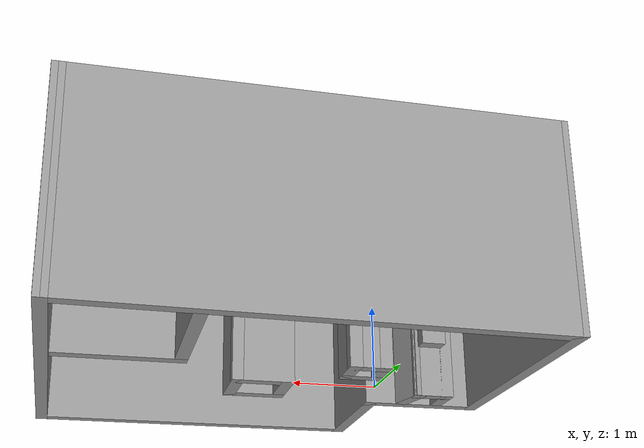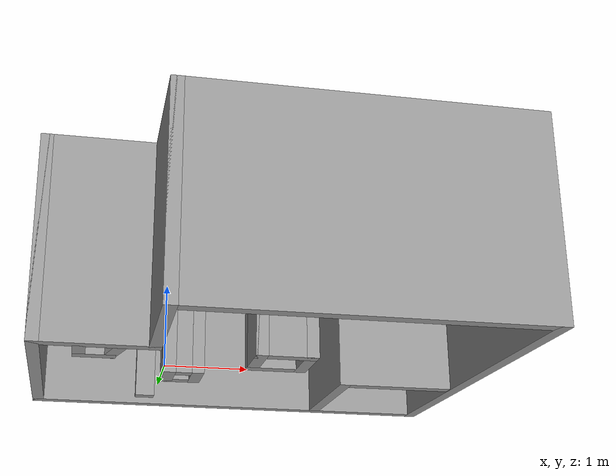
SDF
<?xml version='1.0'?>
<sdf version='1.7'>
  <model name='Project_Room'>
    <pose>1.19362 0.01611 0 0 -0 0</pose>
    <link name='Wall_10'>
      <collision name='Wall_10_Collision'>
        <geometry>
          <box>
            <size>0.538102 0.15 2.5</size>
          </box>
        </geometry>
        <pose>0 0 1.25 0 -0 0</pose>
      </collision>
      <visual name='Wall_10_Visual'>
        <pose>0 0 1.25 0 -0 0</pose>
        <geometry>
          <box>
            <size>0.538102 0.15 2.5</size>
          </box>
        </geometry>
        <material>
          <script>
            <uri>file://media/materials/scripts/gazebo.material</uri>
            <name>Gazebo/Grey</name>
          </script>
          <ambient>1 1 1 1</ambient>
        </material>
        <meta>
          <layer>0</layer>
        </meta>
      </visual>
      <pose>-1.10135 0.53934 0 0 -0 -1.5708</pose>
    </link>
    <link name='Wall_11'>
      <collision name='Wall_11_Collision'>
        <geometry>
          <box>
            <size>0.5 0.15 2.5</size>
          </box>
        </geometry>
        <pose>0 0 1.25 0 -0 0</pose>
      </collision>
      <visual name='Wall_11_Visual'>
        <pose>0 0 1.25 0 -0 0</pose>
        <geometry>
          <box>
            <size>0.5 0.15 2.5</size>
          </box>
        </geometry>
        <material>
          <script>
            <uri>file://media/materials/scripts/gazebo.material</uri>
            <name>Gazebo/Grey</name>
          </script>
          <ambient>1 1 1 1</ambient>
        </material>
        <meta>
          <layer>0</layer>
        </meta>
      </visual>
      <pose>-0.933906 0.345437 0 0 -0 0</pose>
    </link>
    <link name='Wall_12'>
      <collision name='Wall_12_Collision'>
        <geometry>
          <box>
            <size>0.538102 0.15 2.5</size>
          </box>
        </geometry>
        <pose>0 0 1.25 0 -0 0</pose>
      </collision>
      <visual name='Wall_12_Visual'>
        <pose>0 0 1.25 0 -0 0</pose>
        <geometry>
          <box>
            <size>0.538102 0.15 2.5</size>
          </box>
        </geometry>
        <material>
          <script>
            <uri>file://media/materials/scripts/gazebo.material</uri>
            <name>Gazebo/Grey</name>
          </script>
          <ambient>1 1 1 1</ambient>
        </material>
        <meta>
          <layer>0</layer>
        </meta>
      </visual>
      <pose>-0.751345 0.53934 0 0 -0 1.5708</pose>
    </link>
    <link name='Wall_13'>
      <collision name='Wall_13_Collision'>
        <geometry>
          <box>
            <size>0.5 0.15 2.5</size>
          </box>
        </geometry>
        <pose>0 0 1.25 0 -0 0</pose>
      </collision>
      <visual name='Wall_13_Visual'>
        <pose>0 0 1.25 0 -0 0</pose>
        <geometry>
          <box>
            <size>0.5 0.15 2.5</size>
          </box>
        </geometry>
        <material>
          <script>
            <uri>file://media/materials/scripts/gazebo.material</uri>
            <name>Gazebo/Grey</name>
          </script>
          <ambient>1 1 1 1</ambient>
        </material>
        <meta>
          <layer>0</layer>
        </meta>
      </visual>
      <pose>-0.926345 0.733244 0 0 -0 3.14159</pose>
    </link>
    <link name='Wall_15'>
      <collision name='Wall_15_Collision'>
        <geometry>
          <box>
            <size>0.75 0.15 2.5</size>
          </box>
        </geometry>
        <pose>0 0 1.25 0 -0 0</pose>
      </collision>
      <visual name='Wall_15_Visual'>
        <pose>0 0 1.25 0 -0 0</pose>
        <geometry>
          <box>
            <size>0.75 0.15 2.5</size>
          </box>
        </geometry>
        <material>
          <script>
            <uri>file://media/materials/scripts/gazebo.material</uri>
            <name>Gazebo/Grey</name>
          </script>
          <ambient>1 1 1 1</ambient>
        </material>
        <meta>
          <layer>0</layer>
        </meta>
      </visual>
      <pose>-0.138394 -0.370313 0 0 -0 -1.5708</pose>
    </link>
    <link name='Wall_16'>
      <collision name='Wall_16_Collision'>
        <geometry>
          <box>
            <size>0.75 0.15 2.5</size>
          </box>
        </geometry>
        <pose>0 0 1.25 0 -0 0</pose>
      </collision>
      <visual name='Wall_16_Visual'>
        <pose>0 0 1.25 0 -0 0</pose>
        <geometry>
          <box>
            <size>0.75 0.15 2.5</size>
          </box>
        </geometry>
        <material>
          <script>
            <uri>file://media/materials/scripts/gazebo.material</uri>
            <name>Gazebo/Grey</name>
          </script>
          <ambient>1 1 1 1</ambient>
        </material>
        <meta>
          <layer>0</layer>
        </meta>
      </visual>
      <pose>0.161606 -0.670313 0 0 -0 0</pose>
    </link>
    <link name='Wall_17'>
      <collision name='Wall_17_Collision'>
        <geometry>
          <box>
            <size>0.75 0.15 2.5</size>
          </box>
        </geometry>
        <pose>0 0 1.25 0 -0 0</pose>
      </collision>
      <visual name='Wall_17_Visual'>
        <pose>0 0 1.25 0 -0 0</pose>
        <geometry>
          <box>
            <size>0.75 0.15 2.5</size>
          </box>
        </geometry>
        <material>
          <script>
            <uri>file://media/materials/scripts/gazebo.material</uri>
            <name>Gazebo/Grey</name>
          </script>
          <ambient>1 1 1 1</ambient>
        </material>
        <meta>
          <layer>0</layer>
        </meta>
      </visual>
      <pose>0.461606 -0.370313 0 0 -0 1.5708</pose>
    </link>
    <link name='Wall_18'>
      <collision name='Wall_18_Collision'>
        <geometry>
          <box>
            <size>0.75 0.15 2.5</size>
          </box>
        </geometry>
        <pose>0 0 1.25 0 -0 0</pose>
      </collision>
      <visual name='Wall_18_Visual'>
        <pose>0 0 1.25 0 -0 0</pose>
        <geometry>
          <box>
            <size>0.75 0.15 2.5</size>
          </box>
        </geometry>
        <material>
          <script>
            <uri>file://media/materials/scripts/gazebo.material</uri>
            <name>Gazebo/Grey</name>
          </script>
          <ambient>1 1 1 1</ambient>
        </material>
        <meta>
          <layer>0</layer>
        </meta>
      </visual>
      <pose>0.161606 -0.070313 0 0 -0 3.14159</pose>
    </link>
    <link name='Wall_22'>
      <collision name='Wall_22_Collision'>
        <geometry>
          <box>
            <size>0.5 0.15 2.5</size>
          </box>
        </geometry>
        <pose>0 0 1.25 0 -0 0</pose>
      </collision>
      <visual name='Wall_22_Visual'>
        <pose>0 0 1.25 0 -0 0</pose>
        <geometry>
          <box>
            <size>0.5 0.15 2.5</size>
          </box>
        </geometry>
        <material>
          <script>
            <uri>file://media/materials/scripts/gazebo.material</uri>
            <name>Gazebo/Grey</name>
          </script>
          <ambient>1 1 1 1</ambient>
        </material>
        <meta>
          <layer>0</layer>
        </meta>
      </visual>
      <pose>-2.21665 -0.532254 0 0 -0 1.5708</pose>
    </link>
    <link name='Wall_23'>
      <collision name='Wall_23_Collision'>
        <geometry>
          <box>
            <size>0.5 0.15 2.5</size>
          </box>
        </geometry>
        <pose>0 0 1.25 0 -0 0</pose>
      </collision>
      <visual name='Wall_23_Visual'>
        <pose>0 0 1.25 0 -0 0</pose>
        <geometry>
          <box>
            <size>0.5 0.15 2.5</size>
          </box>
        </geometry>
        <material>
          <script>
            <uri>file://media/materials/scripts/gazebo.material</uri>
            <name>Gazebo/Grey</name>
          </script>
          <ambient>1 1 1 1</ambient>
        </material>
        <meta>
          <layer>0</layer>
        </meta>
      </visual>
      <pose>-2.04165 -0.357254 0 0 -0 0</pose>
    </link>
    <link name='Wall_24'>
      <collision name='Wall_24_Collision'>
        <geometry>
          <box>
            <size>0.5 0.15 2.5</size>
          </box>
        </geometry>
        <pose>0 0 1.25 0 -0 0</pose>
      </collision>
      <visual name='Wall_24_Visual'>
        <pose>0 0 1.25 0 -0 0</pose>
        <geometry>
          <box>
            <size>0.5 0.15 2.5</size>
          </box>
        </geometry>
        <material>
          <script>
            <uri>file://media/materials/scripts/gazebo.material</uri>
            <name>Gazebo/Grey</name>
          </script>
          <ambient>1 1 1 1</ambient>
        </material>
        <meta>
          <layer>0</layer>
        </meta>
      </visual>
      <pose>-1.82136 -0.526291 0 0 -0 -1.309</pose>
    </link>
    <link name='Wall_26'>
      <collision name='Wall_26_Collision'>
        <geometry>
          <box>
            <size>1.75 0.15 2.5</size>
          </box>
        </geometry>
        <pose>0 0 1.25 0 -0 0</pose>
      </collision>
      <visual name='Wall_26_Visual'>
        <pose>0 0 1.25 0 -0 0</pose>
        <geometry>
          <box>
            <size>1.75 0.15 2.5</size>
          </box>
        </geometry>
        <material>
          <script>
            <uri>file://media/materials/scripts/gazebo.material</uri>
            <name>Gazebo/Grey</name>
          </script>
          <ambient>1 1 1 1</ambient>
        </material>
        <meta>
          <layer>0</layer>
        </meta>
      </visual>
      <pose>1.2132 1.44462 0 0 -0 -1.5708</pose>
    </link>
    <link name='Wall_27'>
      <collision name='Wall_27_Collision'>
        <geometry>
          <box>
            <size>1.5 0.15 2.5</size>
          </box>
        </geometry>
        <pose>0 0 1.25 0 -0 0</pose>
      </collision>
      <visual name='Wall_27_Visual'>
        <pose>0 0 1.25 0 -0 0</pose>
        <geometry>
          <box>
            <size>1.5 0.15 2.5</size>
          </box>
        </geometry>
        <material>
          <script>
            <uri>file://media/materials/scripts/gazebo.material</uri>
            <name>Gazebo/Grey</name>
          </script>
          <ambient>1 1 1 1</ambient>
        </material>
        <meta>
          <layer>0</layer>
        </meta>
      </visual>
      <pose>1.8882 0.644618 0 0 -0 0</pose>
    </link>
    <link name='Wall_29'>
      <collision name='Wall_29_Collision'>
        <geometry>
          <box>
            <size>0.25 0.15 2.5</size>
          </box>
        </geometry>
        <pose>0 0 1.25 0 -0 0</pose>
      </collision>
      <visual name='Wall_29_Visual'>
        <pose>0 0 1.25 0 -0 0</pose>
        <geometry>
          <box>
            <size>0.25 0.15 2.5</size>
          </box>
        </geometry>
        <material>
          <script>
            <uri>file://media/materials/scripts/gazebo.material</uri>
            <name>Gazebo/Grey</name>
          </script>
          <ambient>1 1 1 1</ambient>
        </material>
        <meta>
          <layer>0</layer>
        </meta>
      </visual>
      <pose>-1.3 1.75928 0 0 -0 0</pose>
    </link>
    <link name='Wall_3'>
      <collision name='Wall_3_Collision'>
        <geometry>
          <box>
            <size>3.25 0.15 2.5</size>
          </box>
        </geometry>
        <pose>0 0 1.25 0 -0 0</pose>
      </collision>
      <visual name='Wall_3_Visual'>
        <pose>0 0 1.25 0 -0 0</pose>
        <geometry>
          <box>
            <size>3.25 0.15 2.5</size>
          </box>
        </geometry>
        <material>
          <script>
            <uri>file://media/materials/scripts/gazebo.material</uri>
            <name>Gazebo/Grey</name>
          </script>
          <ambient>1 1 1 1</ambient>
        </material>
        <meta>
          <layer>0</layer>
        </meta>
      </visual>
      <pose>-2.725 0.723983 0 0 -0 -1.5708</pose>
    </link>
    <link name='Wall_4'>
      <collision name='Wall_4_Collision'>
        <geometry>
          <box>
            <size>1.5 0.15 2.5</size>
          </box>
        </geometry>
        <pose>0 0 1.25 0 -0 0</pose>
      </collision>
      <visual name='Wall_4_Visual'>
        <pose>0 0 1.25 0 -0 0</pose>
        <geometry>
          <box>
            <size>1.5 0.15 2.5</size>
          </box>
        </geometry>
        <material>
          <script>
            <uri>file://media/materials/scripts/gazebo.material</uri>
            <name>Gazebo/Grey</name>
          </script>
          <ambient>1 1 1 1</ambient>
        </material>
        <meta>
          <layer>0</layer>
        </meta>
      </visual>
      <pose>-2.05 -0.826017 0 0 -0 0</pose>
    </link>
    <link name='Wall_5'>
      <collision name='Wall_5_Collision'>
        <geometry>
          <box>
            <size>1.75 0.15 2.5</size>
          </box>
        </geometry>
        <pose>0 0 1.25 0 -0 0</pose>
      </collision>
      <visual name='Wall_5_Visual'>
        <pose>0 0 1.25 0 -0 0</pose>
        <geometry>
          <box>
            <size>1.75 0.15 2.5</size>
          </box>
        </geometry>
        <material>
          <script>
            <uri>file://media/materials/scripts/gazebo.material</uri>
            <name>Gazebo/Grey</name>
          </script>
          <ambient>1 1 1 1</ambient>
        </material>
        <meta>
          <layer>0</layer>
        </meta>
      </visual>
      <pose>-1.375 -1.62602 0 0 -0 -1.5708</pose>
    </link>
    <link name='Wall_6'>
      <collision name='Wall_6_Collision'>
        <geometry>
          <box>
            <size>4.25 0.15 2.5</size>
          </box>
        </geometry>
        <pose>0 0 1.25 0 -0 0</pose>
      </collision>
      <visual name='Wall_6_Visual'>
        <pose>0 0 1.25 0 -0 0</pose>
        <geometry>
          <box>
            <size>4.25 0.15 2.5</size>
          </box>
        </geometry>
        <material>
          <script>
            <uri>file://media/materials/scripts/gazebo.material</uri>
            <name>Gazebo/Grey</name>
          </script>
          <ambient>1 1 1 1</ambient>
        </material>
        <meta>
          <layer>0</layer>
        </meta>
      </visual>
      <pose>0.675 -2.42602 0 0 -0 0</pose>
    </link>
    <link name='Wall_7'>
      <collision name='Wall_7_Collision'>
        <geometry>
          <box>
            <size>5 0.15 2.5</size>
          </box>
        </geometry>
        <pose>0 0 1.25 0 -0 0</pose>
      </collision>
      <visual name='Wall_7_Visual'>
        <pose>0 0 1.25 0 -0 0</pose>
        <geometry>
          <box>
            <size>5 0.15 2.5</size>
          </box>
        </geometry>
        <material>
          <script>
            <uri>file://media/materials/scripts/gazebo.material</uri>
            <name>Gazebo/Grey</name>
          </script>
          <ambient>1 1 1 1</ambient>
        </material>
        <meta>
          <layer>0</layer>
        </meta>
      </visual>
      <pose>2.725 -0.001017 0 0 -0 1.5708</pose>
    </link>
    <link name='Wall_8'>
      <collision name='Wall_8_Collision'>
        <geometry>
          <box>
            <size>5.60206 0.15 2.5</size>
          </box>
        </geometry>
        <pose>0 0 1.25 0 -0 0</pose>
      </collision>
      <visual name='Wall_8_Visual'>
        <pose>0 0 1.25 0 -0 0</pose>
        <geometry>
          <box>
            <size>5.60206 0.15 2.5</size>
          </box>
        </geometry>
        <material>
          <script>
            <uri>file://media/materials/scripts/gazebo.material</uri>
            <name>Gazebo/Grey</name>
          </script>
          <ambient>1 1 1 1</ambient>
        </material>
        <meta>
          <layer>0</layer>
        </meta>
      </visual>
      <pose>0 2.34898 0 0 -0 -3.11408</pose>
    </link>
    <static>1</static>
  </model>
</sdf>
